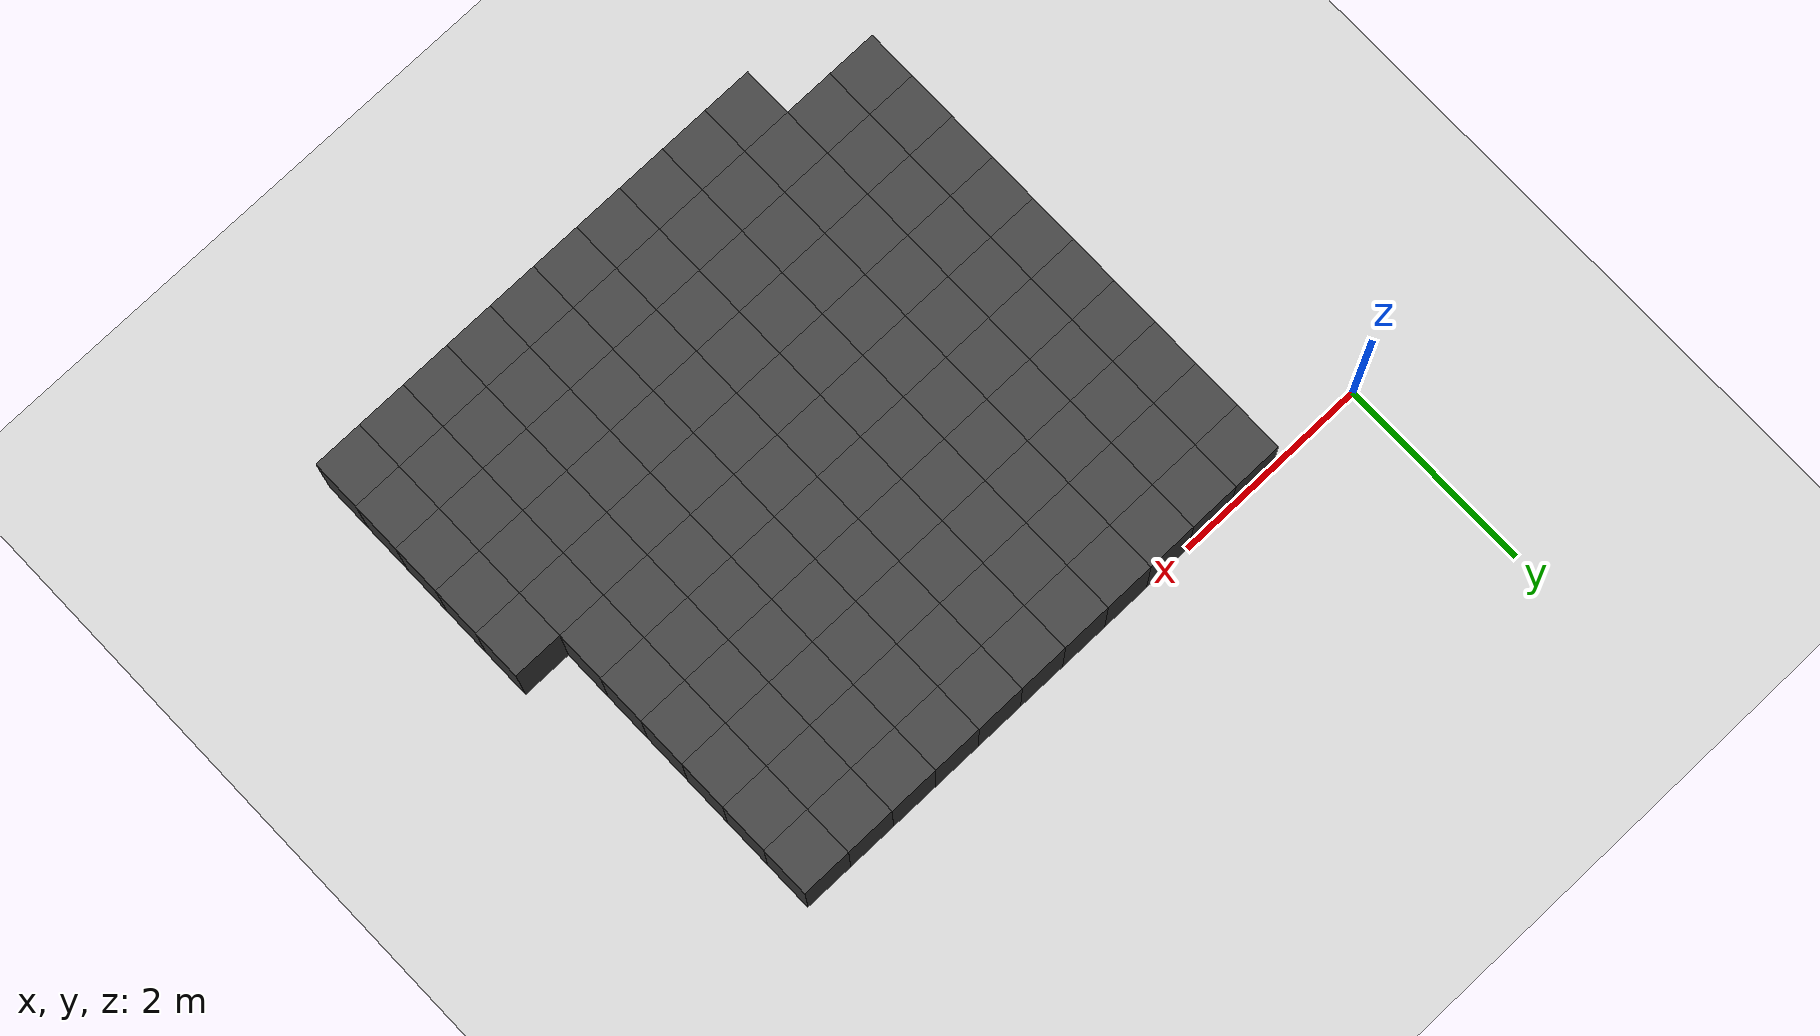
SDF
<sdf version="1.7">
 <world name="map_12818">
  <model name="ground_plane">
   <static>true</static>
   <link name="link">
    <collision name="collision">
     <geometry><plane><normal>0 0 1</normal><size>200 200</size></plane></geometry>
    </collision>
    <visual name="visual">
     <geometry><plane><normal>0 0 1</normal><size>200 200</size></plane></geometry>
     <material><ambient>0.8 0.8 0.8 1</ambient><diffuse>0.8 0.8 0.8 1</diffuse></material>
    </visual>
   </link>
  </model>
  <model name="maze_environment">
   <static>true</static>
   <link name="wall_1112">
    <pose>1.250 -0.250 0.500 0 0 0</pose>
    <collision name="col"><geometry><box><size>0.5 0.5 1.0</size></box></geometry></collision>
    <visual name="vis">
     <geometry><box><size>0.5 0.5 1.0</size></box></geometry>
     <material><ambient>0.15 0.15 0.15 1</ambient><diffuse>0.25 0.25 0.25 1</diffuse></material>
    </visual>
   </link>
   <link name="wall_1113">
    <pose>1.750 -0.250 0.500 0 0 0</pose>
    <collision name="col"><geometry><box><size>0.5 0.5 1.0</size></box></geometry></collision>
    <visual name="vis">
     <geometry><box><size>0.5 0.5 1.0</size></box></geometry>
     <material><ambient>0.15 0.15 0.15 1</ambient><diffuse>0.25 0.25 0.25 1</diffuse></material>
    </visual>
   </link>
   <link name="wall_1114">
    <pose>2.250 -0.250 0.500 0 0 0</pose>
    <collision name="col"><geometry><box><size>0.5 0.5 1.0</size></box></geometry></collision>
    <visual name="vis">
     <geometry><box><size>0.5 0.5 1.0</size></box></geometry>
     <material><ambient>0.15 0.15 0.15 1</ambient><diffuse>0.25 0.25 0.25 1</diffuse></material>
    </visual>
   </link>
   <link name="wall_1115">
    <pose>2.750 -0.250 0.500 0 0 0</pose>
    <collision name="col"><geometry><box><size>0.5 0.5 1.0</size></box></geometry></collision>
    <visual name="vis">
     <geometry><box><size>0.5 0.5 1.0</size></box></geometry>
     <material><ambient>0.15 0.15 0.15 1</ambient><diffuse>0.25 0.25 0.25 1</diffuse></material>
    </visual>
   </link>
   <link name="wall_1116">
    <pose>3.250 -0.250 0.500 0 0 0</pose>
    <collision name="col"><geometry><box><size>0.5 0.5 1.0</size></box></geometry></collision>
    <visual name="vis">
     <geometry><box><size>0.5 0.5 1.0</size></box></geometry>
     <material><ambient>0.15 0.15 0.15 1</ambient><diffuse>0.25 0.25 0.25 1</diffuse></material>
    </visual>
   </link>
   <link name="wall_1117">
    <pose>3.750 -0.250 0.500 0 0 0</pose>
    <collision name="col"><geometry><box><size>0.5 0.5 1.0</size></box></geometry></collision>
    <visual name="vis">
     <geometry><box><size>0.5 0.5 1.0</size></box></geometry>
     <material><ambient>0.15 0.15 0.15 1</ambient><diffuse>0.25 0.25 0.25 1</diffuse></material>
    </visual>
   </link>
   <link name="wall_1118">
    <pose>4.250 -0.250 0.500 0 0 0</pose>
    <collision name="col"><geometry><box><size>0.5 0.5 1.0</size></box></geometry></collision>
    <visual name="vis">
     <geometry><box><size>0.5 0.5 1.0</size></box></geometry>
     <material><ambient>0.15 0.15 0.15 1</ambient><diffuse>0.25 0.25 0.25 1</diffuse></material>
    </visual>
   </link>
   <link name="wall_1119">
    <pose>4.750 -0.250 0.500 0 0 0</pose>
    <collision name="col"><geometry><box><size>0.5 0.5 1.0</size></box></geometry></collision>
    <visual name="vis">
     <geometry><box><size>0.5 0.5 1.0</size></box></geometry>
     <material><ambient>0.15 0.15 0.15 1</ambient><diffuse>0.25 0.25 0.25 1</diffuse></material>
    </visual>
   </link>
   <link name="wall_1120">
    <pose>5.250 -0.250 0.500 0 0 0</pose>
    <collision name="col"><geometry><box><size>0.5 0.5 1.0</size></box></geometry></collision>
    <visual name="vis">
     <geometry><box><size>0.5 0.5 1.0</size></box></geometry>
     <material><ambient>0.15 0.15 0.15 1</ambient><diffuse>0.25 0.25 0.25 1</diffuse></material>
    </visual>
   </link>
   <link name="wall_1121">
    <pose>5.750 -0.250 0.500 0 0 0</pose>
    <collision name="col"><geometry><box><size>0.5 0.5 1.0</size></box></geometry></collision>
    <visual name="vis">
     <geometry><box><size>0.5 0.5 1.0</size></box></geometry>
     <material><ambient>0.15 0.15 0.15 1</ambient><diffuse>0.25 0.25 0.25 1</diffuse></material>
    </visual>
   </link>
   <link name="wall_1122">
    <pose>6.250 -0.250 0.500 0 0 0</pose>
    <collision name="col"><geometry><box><size>0.5 0.5 1.0</size></box></geometry></collision>
    <visual name="vis">
     <geometry><box><size>0.5 0.5 1.0</size></box></geometry>
     <material><ambient>0.15 0.15 0.15 1</ambient><diffuse>0.25 0.25 0.25 1</diffuse></material>
    </visual>
   </link>
   <link name="wall_1155">
    <pose>1.250 -0.750 0.500 0 0 0</pose>
    <collision name="col"><geometry><box><size>0.5 0.5 1.0</size></box></geometry></collision>
    <visual name="vis">
     <geometry><box><size>0.5 0.5 1.0</size></box></geometry>
     <material><ambient>0.15 0.15 0.15 1</ambient><diffuse>0.25 0.25 0.25 1</diffuse></material>
    </visual>
   </link>
   <link name="wall_1156">
    <pose>1.750 -0.750 0.500 0 0 0</pose>
    <collision name="col"><geometry><box><size>0.5 0.5 1.0</size></box></geometry></collision>
    <visual name="vis">
     <geometry><box><size>0.5 0.5 1.0</size></box></geometry>
     <material><ambient>0.15 0.15 0.15 1</ambient><diffuse>0.25 0.25 0.25 1</diffuse></material>
    </visual>
   </link>
   <link name="wall_1157">
    <pose>2.250 -0.750 0.500 0 0 0</pose>
    <collision name="col"><geometry><box><size>0.5 0.5 1.0</size></box></geometry></collision>
    <visual name="vis">
     <geometry><box><size>0.5 0.5 1.0</size></box></geometry>
     <material><ambient>0.15 0.15 0.15 1</ambient><diffuse>0.25 0.25 0.25 1</diffuse></material>
    </visual>
   </link>
   <link name="wall_1158">
    <pose>2.750 -0.750 0.500 0 0 0</pose>
    <collision name="col"><geometry><box><size>0.5 0.5 1.0</size></box></geometry></collision>
    <visual name="vis">
     <geometry><box><size>0.5 0.5 1.0</size></box></geometry>
     <material><ambient>0.15 0.15 0.15 1</ambient><diffuse>0.25 0.25 0.25 1</diffuse></material>
    </visual>
   </link>
   <link name="wall_1159">
    <pose>3.250 -0.750 0.500 0 0 0</pose>
    <collision name="col"><geometry><box><size>0.5 0.5 1.0</size></box></geometry></collision>
    <visual name="vis">
     <geometry><box><size>0.5 0.5 1.0</size></box></geometry>
     <material><ambient>0.15 0.15 0.15 1</ambient><diffuse>0.25 0.25 0.25 1</diffuse></material>
    </visual>
   </link>
   <link name="wall_1160">
    <pose>3.750 -0.750 0.500 0 0 0</pose>
    <collision name="col"><geometry><box><size>0.5 0.5 1.0</size></box></geometry></collision>
    <visual name="vis">
     <geometry><box><size>0.5 0.5 1.0</size></box></geometry>
     <material><ambient>0.15 0.15 0.15 1</ambient><diffuse>0.25 0.25 0.25 1</diffuse></material>
    </visual>
   </link>
   <link name="wall_1161">
    <pose>4.250 -0.750 0.500 0 0 0</pose>
    <collision name="col"><geometry><box><size>0.5 0.5 1.0</size></box></geometry></collision>
    <visual name="vis">
     <geometry><box><size>0.5 0.5 1.0</size></box></geometry>
     <material><ambient>0.15 0.15 0.15 1</ambient><diffuse>0.25 0.25 0.25 1</diffuse></material>
    </visual>
   </link>
   <link name="wall_1162">
    <pose>4.750 -0.750 0.500 0 0 0</pose>
    <collision name="col"><geometry><box><size>0.5 0.5 1.0</size></box></geometry></collision>
    <visual name="vis">
     <geometry><box><size>0.5 0.5 1.0</size></box></geometry>
     <material><ambient>0.15 0.15 0.15 1</ambient><diffuse>0.25 0.25 0.25 1</diffuse></material>
    </visual>
   </link>
   <link name="wall_1163">
    <pose>5.250 -0.750 0.500 0 0 0</pose>
    <collision name="col"><geometry><box><size>0.5 0.5 1.0</size></box></geometry></collision>
    <visual name="vis">
     <geometry><box><size>0.5 0.5 1.0</size></box></geometry>
     <material><ambient>0.15 0.15 0.15 1</ambient><diffuse>0.25 0.25 0.25 1</diffuse></material>
    </visual>
   </link>
   <link name="wall_1164">
    <pose>5.750 -0.750 0.500 0 0 0</pose>
    <collision name="col"><geometry><box><size>0.5 0.5 1.0</size></box></geometry></collision>
    <visual name="vis">
     <geometry><box><size>0.5 0.5 1.0</size></box></geometry>
     <material><ambient>0.15 0.15 0.15 1</ambient><diffuse>0.25 0.25 0.25 1</diffuse></material>
    </visual>
   </link>
   <link name="wall_1165">
    <pose>6.250 -0.750 0.500 0 0 0</pose>
    <collision name="col"><geometry><box><size>0.5 0.5 1.0</size></box></geometry></collision>
    <visual name="vis">
     <geometry><box><size>0.5 0.5 1.0</size></box></geometry>
     <material><ambient>0.15 0.15 0.15 1</ambient><diffuse>0.25 0.25 0.25 1</diffuse></material>
    </visual>
   </link>
   <link name="wall_1198">
    <pose>1.250 -1.250 0.500 0 0 0</pose>
    <collision name="col"><geometry><box><size>0.5 0.5 1.0</size></box></geometry></collision>
    <visual name="vis">
     <geometry><box><size>0.5 0.5 1.0</size></box></geometry>
     <material><ambient>0.15 0.15 0.15 1</ambient><diffuse>0.25 0.25 0.25 1</diffuse></material>
    </visual>
   </link>
   <link name="wall_1199">
    <pose>1.750 -1.250 0.500 0 0 0</pose>
    <collision name="col"><geometry><box><size>0.5 0.5 1.0</size></box></geometry></collision>
    <visual name="vis">
     <geometry><box><size>0.5 0.5 1.0</size></box></geometry>
     <material><ambient>0.15 0.15 0.15 1</ambient><diffuse>0.25 0.25 0.25 1</diffuse></material>
    </visual>
   </link>
   <link name="wall_1200">
    <pose>2.250 -1.250 0.500 0 0 0</pose>
    <collision name="col"><geometry><box><size>0.5 0.5 1.0</size></box></geometry></collision>
    <visual name="vis">
     <geometry><box><size>0.5 0.5 1.0</size></box></geometry>
     <material><ambient>0.15 0.15 0.15 1</ambient><diffuse>0.25 0.25 0.25 1</diffuse></material>
    </visual>
   </link>
   <link name="wall_1201">
    <pose>2.750 -1.250 0.500 0 0 0</pose>
    <collision name="col"><geometry><box><size>0.5 0.5 1.0</size></box></geometry></collision>
    <visual name="vis">
     <geometry><box><size>0.5 0.5 1.0</size></box></geometry>
     <material><ambient>0.15 0.15 0.15 1</ambient><diffuse>0.25 0.25 0.25 1</diffuse></material>
    </visual>
   </link>
   <link name="wall_1202">
    <pose>3.250 -1.250 0.500 0 0 0</pose>
    <collision name="col"><geometry><box><size>0.5 0.5 1.0</size></box></geometry></collision>
    <visual name="vis">
     <geometry><box><size>0.5 0.5 1.0</size></box></geometry>
     <material><ambient>0.15 0.15 0.15 1</ambient><diffuse>0.25 0.25 0.25 1</diffuse></material>
    </visual>
   </link>
   <link name="wall_1203">
    <pose>3.750 -1.250 0.500 0 0 0</pose>
    <collision name="col"><geometry><box><size>0.5 0.5 1.0</size></box></geometry></collision>
    <visual name="vis">
     <geometry><box><size>0.5 0.5 1.0</size></box></geometry>
     <material><ambient>0.15 0.15 0.15 1</ambient><diffuse>0.25 0.25 0.25 1</diffuse></material>
    </visual>
   </link>
   <link name="wall_1204">
    <pose>4.250 -1.250 0.500 0 0 0</pose>
    <collision name="col"><geometry><box><size>0.5 0.5 1.0</size></box></geometry></collision>
    <visual name="vis">
     <geometry><box><size>0.5 0.5 1.0</size></box></geometry>
     <material><ambient>0.15 0.15 0.15 1</ambient><diffuse>0.25 0.25 0.25 1</diffuse></material>
    </visual>
   </link>
   <link name="wall_1205">
    <pose>4.750 -1.250 0.500 0 0 0</pose>
    <collision name="col"><geometry><box><size>0.5 0.5 1.0</size></box></geometry></collision>
    <visual name="vis">
     <geometry><box><size>0.5 0.5 1.0</size></box></geometry>
     <material><ambient>0.15 0.15 0.15 1</ambient><diffuse>0.25 0.25 0.25 1</diffuse></material>
    </visual>
   </link>
   <link name="wall_1206">
    <pose>5.250 -1.250 0.500 0 0 0</pose>
    <collision name="col"><geometry><box><size>0.5 0.5 1.0</size></box></geometry></collision>
    <visual name="vis">
     <geometry><box><size>0.5 0.5 1.0</size></box></geometry>
     <material><ambient>0.15 0.15 0.15 1</ambient><diffuse>0.25 0.25 0.25 1</diffuse></material>
    </visual>
   </link>
   <link name="wall_1207">
    <pose>5.750 -1.250 0.500 0 0 0</pose>
    <collision name="col"><geometry><box><size>0.5 0.5 1.0</size></box></geometry></collision>
    <visual name="vis">
     <geometry><box><size>0.5 0.5 1.0</size></box></geometry>
     <material><ambient>0.15 0.15 0.15 1</ambient><diffuse>0.25 0.25 0.25 1</diffuse></material>
    </visual>
   </link>
   <link name="wall_1208">
    <pose>6.250 -1.250 0.500 0 0 0</pose>
    <collision name="col"><geometry><box><size>0.5 0.5 1.0</size></box></geometry></collision>
    <visual name="vis">
     <geometry><box><size>0.5 0.5 1.0</size></box></geometry>
     <material><ambient>0.15 0.15 0.15 1</ambient><diffuse>0.25 0.25 0.25 1</diffuse></material>
    </visual>
   </link>
   <link name="wall_1235">
    <pose>1.250 -1.750 0.500 0 0 0</pose>
    <collision name="col"><geometry><box><size>0.5 0.5 1.0</size></box></geometry></collision>
    <visual name="vis">
     <geometry><box><size>0.5 0.5 1.0</size></box></geometry>
     <material><ambient>0.15 0.15 0.15 1</ambient><diffuse>0.25 0.25 0.25 1</diffuse></material>
    </visual>
   </link>
   <link name="wall_1236">
    <pose>1.750 -1.750 0.500 0 0 0</pose>
    <collision name="col"><geometry><box><size>0.5 0.5 1.0</size></box></geometry></collision>
    <visual name="vis">
     <geometry><box><size>0.5 0.5 1.0</size></box></geometry>
     <material><ambient>0.15 0.15 0.15 1</ambient><diffuse>0.25 0.25 0.25 1</diffuse></material>
    </visual>
   </link>
   <link name="wall_1237">
    <pose>2.250 -1.750 0.500 0 0 0</pose>
    <collision name="col"><geometry><box><size>0.5 0.5 1.0</size></box></geometry></collision>
    <visual name="vis">
     <geometry><box><size>0.5 0.5 1.0</size></box></geometry>
     <material><ambient>0.15 0.15 0.15 1</ambient><diffuse>0.25 0.25 0.25 1</diffuse></material>
    </visual>
   </link>
   <link name="wall_1238">
    <pose>2.750 -1.750 0.500 0 0 0</pose>
    <collision name="col"><geometry><box><size>0.5 0.5 1.0</size></box></geometry></collision>
    <visual name="vis">
     <geometry><box><size>0.5 0.5 1.0</size></box></geometry>
     <material><ambient>0.15 0.15 0.15 1</ambient><diffuse>0.25 0.25 0.25 1</diffuse></material>
    </visual>
   </link>
   <link name="wall_1239">
    <pose>3.250 -1.750 0.500 0 0 0</pose>
    <collision name="col"><geometry><box><size>0.5 0.5 1.0</size></box></geometry></collision>
    <visual name="vis">
     <geometry><box><size>0.5 0.5 1.0</size></box></geometry>
     <material><ambient>0.15 0.15 0.15 1</ambient><diffuse>0.25 0.25 0.25 1</diffuse></material>
    </visual>
   </link>
   <link name="wall_1240">
    <pose>3.750 -1.750 0.500 0 0 0</pose>
    <collision name="col"><geometry><box><size>0.5 0.5 1.0</size></box></geometry></collision>
    <visual name="vis">
     <geometry><box><size>0.5 0.5 1.0</size></box></geometry>
     <material><ambient>0.15 0.15 0.15 1</ambient><diffuse>0.25 0.25 0.25 1</diffuse></material>
    </visual>
   </link>
   <link name="wall_1241">
    <pose>4.250 -1.750 0.500 0 0 0</pose>
    <collision name="col"><geometry><box><size>0.5 0.5 1.0</size></box></geometry></collision>
    <visual name="vis">
     <geometry><box><size>0.5 0.5 1.0</size></box></geometry>
     <material><ambient>0.15 0.15 0.15 1</ambient><diffuse>0.25 0.25 0.25 1</diffuse></material>
    </visual>
   </link>
   <link name="wall_1242">
    <pose>4.750 -1.750 0.500 0 0 0</pose>
    <collision name="col"><geometry><box><size>0.5 0.5 1.0</size></box></geometry></collision>
    <visual name="vis">
     <geometry><box><size>0.5 0.5 1.0</size></box></geometry>
     <material><ambient>0.15 0.15 0.15 1</ambient><diffuse>0.25 0.25 0.25 1</diffuse></material>
    </visual>
   </link>
   <link name="wall_1243">
    <pose>5.250 -1.750 0.500 0 0 0</pose>
    <collision name="col"><geometry><box><size>0.5 0.5 1.0</size></box></geometry></collision>
    <visual name="vis">
     <geometry><box><size>0.5 0.5 1.0</size></box></geometry>
     <material><ambient>0.15 0.15 0.15 1</ambient><diffuse>0.25 0.25 0.25 1</diffuse></material>
    </visual>
   </link>
   <link name="wall_1244">
    <pose>5.750 -1.750 0.500 0 0 0</pose>
    <collision name="col"><geometry><box><size>0.5 0.5 1.0</size></box></geometry></collision>
    <visual name="vis">
     <geometry><box><size>0.5 0.5 1.0</size></box></geometry>
     <material><ambient>0.15 0.15 0.15 1</ambient><diffuse>0.25 0.25 0.25 1</diffuse></material>
    </visual>
   </link>
   <link name="wall_1245">
    <pose>6.250 -1.750 0.500 0 0 0</pose>
    <collision name="col"><geometry><box><size>0.5 0.5 1.0</size></box></geometry></collision>
    <visual name="vis">
     <geometry><box><size>0.5 0.5 1.0</size></box></geometry>
     <material><ambient>0.15 0.15 0.15 1</ambient><diffuse>0.25 0.25 0.25 1</diffuse></material>
    </visual>
   </link>
   <link name="wall_1272">
    <pose>1.250 -2.250 0.500 0 0 0</pose>
    <collision name="col"><geometry><box><size>0.5 0.5 1.0</size></box></geometry></collision>
    <visual name="vis">
     <geometry><box><size>0.5 0.5 1.0</size></box></geometry>
     <material><ambient>0.15 0.15 0.15 1</ambient><diffuse>0.25 0.25 0.25 1</diffuse></material>
    </visual>
   </link>
   <link name="wall_1273">
    <pose>1.750 -2.250 0.500 0 0 0</pose>
    <collision name="col"><geometry><box><size>0.5 0.5 1.0</size></box></geometry></collision>
    <visual name="vis">
     <geometry><box><size>0.5 0.5 1.0</size></box></geometry>
     <material><ambient>0.15 0.15 0.15 1</ambient><diffuse>0.25 0.25 0.25 1</diffuse></material>
    </visual>
   </link>
   <link name="wall_1274">
    <pose>2.250 -2.250 0.500 0 0 0</pose>
    <collision name="col"><geometry><box><size>0.5 0.5 1.0</size></box></geometry></collision>
    <visual name="vis">
     <geometry><box><size>0.5 0.5 1.0</size></box></geometry>
     <material><ambient>0.15 0.15 0.15 1</ambient><diffuse>0.25 0.25 0.25 1</diffuse></material>
    </visual>
   </link>
   <link name="wall_1275">
    <pose>2.750 -2.250 0.500 0 0 0</pose>
    <collision name="col"><geometry><box><size>0.5 0.5 1.0</size></box></geometry></collision>
    <visual name="vis">
     <geometry><box><size>0.5 0.5 1.0</size></box></geometry>
     <material><ambient>0.15 0.15 0.15 1</ambient><diffuse>0.25 0.25 0.25 1</diffuse></material>
    </visual>
   </link>
   <link name="wall_1276">
    <pose>3.250 -2.250 0.500 0 0 0</pose>
    <collision name="col"><geometry><box><size>0.5 0.5 1.0</size></box></geometry></collision>
    <visual name="vis">
     <geometry><box><size>0.5 0.5 1.0</size></box></geometry>
     <material><ambient>0.15 0.15 0.15 1</ambient><diffuse>0.25 0.25 0.25 1</diffuse></material>
    </visual>
   </link>
   <link name="wall_1277">
    <pose>3.750 -2.250 0.500 0 0 0</pose>
    <collision name="col"><geometry><box><size>0.5 0.5 1.0</size></box></geometry></collision>
    <visual name="vis">
     <geometry><box><size>0.5 0.5 1.0</size></box></geometry>
     <material><ambient>0.15 0.15 0.15 1</ambient><diffuse>0.25 0.25 0.25 1</diffuse></material>
    </visual>
   </link>
   <link name="wall_1278">
    <pose>4.250 -2.250 0.500 0 0 0</pose>
    <collision name="col"><geometry><box><size>0.5 0.5 1.0</size></box></geometry></collision>
    <visual name="vis">
     <geometry><box><size>0.5 0.5 1.0</size></box></geometry>
     <material><ambient>0.15 0.15 0.15 1</ambient><diffuse>0.25 0.25 0.25 1</diffuse></material>
    </visual>
   </link>
   <link name="wall_1279">
    <pose>4.750 -2.250 0.500 0 0 0</pose>
    <collision name="col"><geometry><box><size>0.5 0.5 1.0</size></box></geometry></collision>
    <visual name="vis">
     <geometry><box><size>0.5 0.5 1.0</size></box></geometry>
     <material><ambient>0.15 0.15 0.15 1</ambient><diffuse>0.25 0.25 0.25 1</diffuse></material>
    </visual>
   </link>
   <link name="wall_1280">
    <pose>5.250 -2.250 0.500 0 0 0</pose>
    <collision name="col"><geometry><box><size>0.5 0.5 1.0</size></box></geometry></collision>
    <visual name="vis">
     <geometry><box><size>0.5 0.5 1.0</size></box></geometry>
     <material><ambient>0.15 0.15 0.15 1</ambient><diffuse>0.25 0.25 0.25 1</diffuse></material>
    </visual>
   </link>
   <link name="wall_1281">
    <pose>5.750 -2.250 0.500 0 0 0</pose>
    <collision name="col"><geometry><box><size>0.5 0.5 1.0</size></box></geometry></collision>
    <visual name="vis">
     <geometry><box><size>0.5 0.5 1.0</size></box></geometry>
     <material><ambient>0.15 0.15 0.15 1</ambient><diffuse>0.25 0.25 0.25 1</diffuse></material>
    </visual>
   </link>
   <link name="wall_1282">
    <pose>6.250 -2.250 0.500 0 0 0</pose>
    <collision name="col"><geometry><box><size>0.5 0.5 1.0</size></box></geometry></collision>
    <visual name="vis">
     <geometry><box><size>0.5 0.5 1.0</size></box></geometry>
     <material><ambient>0.15 0.15 0.15 1</ambient><diffuse>0.25 0.25 0.25 1</diffuse></material>
    </visual>
   </link>
   <link name="wall_1313">
    <pose>1.250 -2.750 0.500 0 0 0</pose>
    <collision name="col"><geometry><box><size>0.5 0.5 1.0</size></box></geometry></collision>
    <visual name="vis">
     <geometry><box><size>0.5 0.5 1.0</size></box></geometry>
     <material><ambient>0.15 0.15 0.15 1</ambient><diffuse>0.25 0.25 0.25 1</diffuse></material>
    </visual>
   </link>
   <link name="wall_1314">
    <pose>1.750 -2.750 0.500 0 0 0</pose>
    <collision name="col"><geometry><box><size>0.5 0.5 1.0</size></box></geometry></collision>
    <visual name="vis">
     <geometry><box><size>0.5 0.5 1.0</size></box></geometry>
     <material><ambient>0.15 0.15 0.15 1</ambient><diffuse>0.25 0.25 0.25 1</diffuse></material>
    </visual>
   </link>
   <link name="wall_1315">
    <pose>2.250 -2.750 0.500 0 0 0</pose>
    <collision name="col"><geometry><box><size>0.5 0.5 1.0</size></box></geometry></collision>
    <visual name="vis">
     <geometry><box><size>0.5 0.5 1.0</size></box></geometry>
     <material><ambient>0.15 0.15 0.15 1</ambient><diffuse>0.25 0.25 0.25 1</diffuse></material>
    </visual>
   </link>
   <link name="wall_1316">
    <pose>2.750 -2.750 0.500 0 0 0</pose>
    <collision name="col"><geometry><box><size>0.5 0.5 1.0</size></box></geometry></collision>
    <visual name="vis">
     <geometry><box><size>0.5 0.5 1.0</size></box></geometry>
     <material><ambient>0.15 0.15 0.15 1</ambient><diffuse>0.25 0.25 0.25 1</diffuse></material>
    </visual>
   </link>
   <link name="wall_1317">
    <pose>3.250 -2.750 0.500 0 0 0</pose>
    <collision name="col"><geometry><box><size>0.5 0.5 1.0</size></box></geometry></collision>
    <visual name="vis">
     <geometry><box><size>0.5 0.5 1.0</size></box></geometry>
     <material><ambient>0.15 0.15 0.15 1</ambient><diffuse>0.25 0.25 0.25 1</diffuse></material>
    </visual>
   </link>
   <link name="wall_1318">
    <pose>3.750 -2.750 0.500 0 0 0</pose>
    <collision name="col"><geometry><box><size>0.5 0.5 1.0</size></box></geometry></collision>
    <visual name="vis">
     <geometry><box><size>0.5 0.5 1.0</size></box></geometry>
     <material><ambient>0.15 0.15 0.15 1</ambient><diffuse>0.25 0.25 0.25 1</diffuse></material>
    </visual>
   </link>
   <link name="wall_1319">
    <pose>4.250 -2.750 0.500 0 0 0</pose>
    <collision name="col"><geometry><box><size>0.5 0.5 1.0</size></box></geometry></collision>
    <visual name="vis">
     <geometry><box><size>0.5 0.5 1.0</size></box></geometry>
     <material><ambient>0.15 0.15 0.15 1</ambient><diffuse>0.25 0.25 0.25 1</diffuse></material>
    </visual>
   </link>
   <link name="wall_1320">
    <pose>4.750 -2.750 0.500 0 0 0</pose>
    <collision name="col"><geometry><box><size>0.5 0.5 1.0</size></box></geometry></collision>
    <visual name="vis">
     <geometry><box><size>0.5 0.5 1.0</size></box></geometry>
     <material><ambient>0.15 0.15 0.15 1</ambient><diffuse>0.25 0.25 0.25 1</diffuse></material>
    </visual>
   </link>
   <link name="wall_1321">
    <pose>5.250 -2.750 0.500 0 0 0</pose>
    <collision name="col"><geometry><box><size>0.5 0.5 1.0</size></box></geometry></collision>
    <visual name="vis">
     <geometry><box><size>0.5 0.5 1.0</size></box></geometry>
     <material><ambient>0.15 0.15 0.15 1</ambient><diffuse>0.25 0.25 0.25 1</diffuse></material>
    </visual>
   </link>
   <link name="wall_1322">
    <pose>5.750 -2.750 0.500 0 0 0</pose>
    <collision name="col"><geometry><box><size>0.5 0.5 1.0</size></box></geometry></collision>
    <visual name="vis">
     <geometry><box><size>0.5 0.5 1.0</size></box></geometry>
     <material><ambient>0.15 0.15 0.15 1</ambient><diffuse>0.25 0.25 0.25 1</diffuse></material>
    </visual>
   </link>
   <link name="wall_1323">
    <pose>6.250 -2.750 0.500 0 0 0</pose>
    <collision name="col"><geometry><box><size>0.5 0.5 1.0</size></box></geometry></collision>
    <visual name="vis">
     <geometry><box><size>0.5 0.5 1.0</size></box></geometry>
     <material><ambient>0.15 0.15 0.15 1</ambient><diffuse>0.25 0.25 0.25 1</diffuse></material>
    </visual>
   </link>
   <link name="wall_1345">
    <pose>1.250 -3.250 0.500 0 0 0</pose>
    <collision name="col"><geometry><box><size>0.5 0.5 1.0</size></box></geometry></collision>
    <visual name="vis">
     <geometry><box><size>0.5 0.5 1.0</size></box></geometry>
     <material><ambient>0.15 0.15 0.15 1</ambient><diffuse>0.25 0.25 0.25 1</diffuse></material>
    </visual>
   </link>
   <link name="wall_1346">
    <pose>1.750 -3.250 0.500 0 0 0</pose>
    <collision name="col"><geometry><box><size>0.5 0.5 1.0</size></box></geometry></collision>
    <visual name="vis">
     <geometry><box><size>0.5 0.5 1.0</size></box></geometry>
     <material><ambient>0.15 0.15 0.15 1</ambient><diffuse>0.25 0.25 0.25 1</diffuse></material>
    </visual>
   </link>
   <link name="wall_1347">
    <pose>2.250 -3.250 0.500 0 0 0</pose>
    <collision name="col"><geometry><box><size>0.5 0.5 1.0</size></box></geometry></collision>
    <visual name="vis">
     <geometry><box><size>0.5 0.5 1.0</size></box></geometry>
     <material><ambient>0.15 0.15 0.15 1</ambient><diffuse>0.25 0.25 0.25 1</diffuse></material>
    </visual>
   </link>
   <link name="wall_1348">
    <pose>2.750 -3.250 0.500 0 0 0</pose>
    <collision name="col"><geometry><box><size>0.5 0.5 1.0</size></box></geometry></collision>
    <visual name="vis">
     <geometry><box><size>0.5 0.5 1.0</size></box></geometry>
     <material><ambient>0.15 0.15 0.15 1</ambient><diffuse>0.25 0.25 0.25 1</diffuse></material>
    </visual>
   </link>
   <link name="wall_1349">
    <pose>3.250 -3.250 0.500 0 0 0</pose>
    <collision name="col"><geometry><box><size>0.5 0.5 1.0</size></box></geometry></collision>
    <visual name="vis">
     <geometry><box><size>0.5 0.5 1.0</size></box></geometry>
     <material><ambient>0.15 0.15 0.15 1</ambient><diffuse>0.25 0.25 0.25 1</diffuse></material>
    </visual>
   </link>
   <link name="wall_1350">
    <pose>3.750 -3.250 0.500 0 0 0</pose>
    <collision name="col"><geometry><box><size>0.5 0.5 1.0</size></box></geometry></collision>
    <visual name="vis">
     <geometry><box><size>0.5 0.5 1.0</size></box></geometry>
     <material><ambient>0.15 0.15 0.15 1</ambient><diffuse>0.25 0.25 0.25 1</diffuse></material>
    </visual>
   </link>
   <link name="wall_1351">
    <pose>4.250 -3.250 0.500 0 0 0</pose>
    <collision name="col"><geometry><box><size>0.5 0.5 1.0</size></box></geometry></collision>
    <visual name="vis">
     <geometry><box><size>0.5 0.5 1.0</size></box></geometry>
     <material><ambient>0.15 0.15 0.15 1</ambient><diffuse>0.25 0.25 0.25 1</diffuse></material>
    </visual>
   </link>
   <link name="wall_1352">
    <pose>4.750 -3.250 0.500 0 0 0</pose>
    <collision name="col"><geometry><box><size>0.5 0.5 1.0</size></box></geometry></collision>
    <visual name="vis">
     <geometry><box><size>0.5 0.5 1.0</size></box></geometry>
     <material><ambient>0.15 0.15 0.15 1</ambient><diffuse>0.25 0.25 0.25 1</diffuse></material>
    </visual>
   </link>
   <link name="wall_1353">
    <pose>5.250 -3.250 0.500 0 0 0</pose>
    <collision name="col"><geometry><box><size>0.5 0.5 1.0</size></box></geometry></collision>
    <visual name="vis">
     <geometry><box><size>0.5 0.5 1.0</size></box></geometry>
     <material><ambient>0.15 0.15 0.15 1</ambient><diffuse>0.25 0.25 0.25 1</diffuse></material>
    </visual>
   </link>
   <link name="wall_1354">
    <pose>5.750 -3.250 0.500 0 0 0</pose>
    <collision name="col"><geometry><box><size>0.5 0.5 1.0</size></box></geometry></collision>
    <visual name="vis">
     <geometry><box><size>0.5 0.5 1.0</size></box></geometry>
     <material><ambient>0.15 0.15 0.15 1</ambient><diffuse>0.25 0.25 0.25 1</diffuse></material>
    </visual>
   </link>
   <link name="wall_1355">
    <pose>6.250 -3.250 0.500 0 0 0</pose>
    <collision name="col"><geometry><box><size>0.5 0.5 1.0</size></box></geometry></collision>
    <visual name="vis">
     <geometry><box><size>0.5 0.5 1.0</size></box></geometry>
     <material><ambient>0.15 0.15 0.15 1</ambient><diffuse>0.25 0.25 0.25 1</diffuse></material>
    </visual>
   </link>
   <link name="wall_1356">
    <pose>6.750 -3.250 0.500 0 0 0</pose>
    <collision name="col"><geometry><box><size>0.5 0.5 1.0</size></box></geometry></collision>
    <visual name="vis">
     <geometry><box><size>0.5 0.5 1.0</size></box></geometry>
     <material><ambient>0.15 0.15 0.15 1</ambient><diffuse>0.25 0.25 0.25 1</diffuse></material>
    </visual>
   </link>
   <link name="wall_1377">
    <pose>1.250 -3.750 0.500 0 0 0</pose>
    <collision name="col"><geometry><box><size>0.5 0.5 1.0</size></box></geometry></collision>
    <visual name="vis">
     <geometry><box><size>0.5 0.5 1.0</size></box></geometry>
     <material><ambient>0.15 0.15 0.15 1</ambient><diffuse>0.25 0.25 0.25 1</diffuse></material>
    </visual>
   </link>
   <link name="wall_1378">
    <pose>1.750 -3.750 0.500 0 0 0</pose>
    <collision name="col"><geometry><box><size>0.5 0.5 1.0</size></box></geometry></collision>
    <visual name="vis">
     <geometry><box><size>0.5 0.5 1.0</size></box></geometry>
     <material><ambient>0.15 0.15 0.15 1</ambient><diffuse>0.25 0.25 0.25 1</diffuse></material>
    </visual>
   </link>
   <link name="wall_1379">
    <pose>2.250 -3.750 0.500 0 0 0</pose>
    <collision name="col"><geometry><box><size>0.5 0.5 1.0</size></box></geometry></collision>
    <visual name="vis">
     <geometry><box><size>0.5 0.5 1.0</size></box></geometry>
     <material><ambient>0.15 0.15 0.15 1</ambient><diffuse>0.25 0.25 0.25 1</diffuse></material>
    </visual>
   </link>
   <link name="wall_1380">
    <pose>2.750 -3.750 0.500 0 0 0</pose>
    <collision name="col"><geometry><box><size>0.5 0.5 1.0</size></box></geometry></collision>
    <visual name="vis">
     <geometry><box><size>0.5 0.5 1.0</size></box></geometry>
     <material><ambient>0.15 0.15 0.15 1</ambient><diffuse>0.25 0.25 0.25 1</diffuse></material>
    </visual>
   </link>
   <link name="wall_1381">
    <pose>3.250 -3.750 0.500 0 0 0</pose>
    <collision name="col"><geometry><box><size>0.5 0.5 1.0</size></box></geometry></collision>
    <visual name="vis">
     <geometry><box><size>0.5 0.5 1.0</size></box></geometry>
     <material><ambient>0.15 0.15 0.15 1</ambient><diffuse>0.25 0.25 0.25 1</diffuse></material>
    </visual>
   </link>
   <link name="wall_1382">
    <pose>3.750 -3.750 0.500 0 0 0</pose>
    <collision name="col"><geometry><box><size>0.5 0.5 1.0</size></box></geometry></collision>
    <visual name="vis">
     <geometry><box><size>0.5 0.5 1.0</size></box></geometry>
     <material><ambient>0.15 0.15 0.15 1</ambient><diffuse>0.25 0.25 0.25 1</diffuse></material>
    </visual>
   </link>
   <link name="wall_1383">
    <pose>4.250 -3.750 0.500 0 0 0</pose>
    <collision name="col"><geometry><box><size>0.5 0.5 1.0</size></box></geometry></collision>
    <visual name="vis">
     <geometry><box><size>0.5 0.5 1.0</size></box></geometry>
     <material><ambient>0.15 0.15 0.15 1</ambient><diffuse>0.25 0.25 0.25 1</diffuse></material>
    </visual>
   </link>
   <link name="wall_1384">
    <pose>4.750 -3.750 0.500 0 0 0</pose>
    <collision name="col"><geometry><box><size>0.5 0.5 1.0</size></box></geometry></collision>
    <visual name="vis">
     <geometry><box><size>0.5 0.5 1.0</size></box></geometry>
     <material><ambient>0.15 0.15 0.15 1</ambient><diffuse>0.25 0.25 0.25 1</diffuse></material>
    </visual>
   </link>
   <link name="wall_1385">
    <pose>5.250 -3.750 0.500 0 0 0</pose>
    <collision name="col"><geometry><box><size>0.5 0.5 1.0</size></box></geometry></collision>
    <visual name="vis">
     <geometry><box><size>0.5 0.5 1.0</size></box></geometry>
     <material><ambient>0.15 0.15 0.15 1</ambient><diffuse>0.25 0.25 0.25 1</diffuse></material>
    </visual>
   </link>
   <link name="wall_1386">
    <pose>5.750 -3.750 0.500 0 0 0</pose>
    <collision name="col"><geometry><box><size>0.5 0.5 1.0</size></box></geometry></collision>
    <visual name="vis">
     <geometry><box><size>0.5 0.5 1.0</size></box></geometry>
     <material><ambient>0.15 0.15 0.15 1</ambient><diffuse>0.25 0.25 0.25 1</diffuse></material>
    </visual>
   </link>
   <link name="wall_1387">
    <pose>6.250 -3.750 0.500 0 0 0</pose>
    <collision name="col"><geometry><box><size>0.5 0.5 1.0</size></box></geometry></collision>
    <visual name="vis">
     <geometry><box><size>0.5 0.5 1.0</size></box></geometry>
     <material><ambient>0.15 0.15 0.15 1</ambient><diffuse>0.25 0.25 0.25 1</diffuse></material>
    </visual>
   </link>
   <link name="wall_1388">
    <pose>6.750 -3.750 0.500 0 0 0</pose>
    <collision name="col"><geometry><box><size>0.5 0.5 1.0</size></box></geometry></collision>
    <visual name="vis">
     <geometry><box><size>0.5 0.5 1.0</size></box></geometry>
     <material><ambient>0.15 0.15 0.15 1</ambient><diffuse>0.25 0.25 0.25 1</diffuse></material>
    </visual>
   </link>
   <link name="wall_1413">
    <pose>1.250 -4.250 0.500 0 0 0</pose>
    <collision name="col"><geometry><box><size>0.5 0.5 1.0</size></box></geometry></collision>
    <visual name="vis">
     <geometry><box><size>0.5 0.5 1.0</size></box></geometry>
     <material><ambient>0.15 0.15 0.15 1</ambient><diffuse>0.25 0.25 0.25 1</diffuse></material>
    </visual>
   </link>
   <link name="wall_1414">
    <pose>1.750 -4.250 0.500 0 0 0</pose>
    <collision name="col"><geometry><box><size>0.5 0.5 1.0</size></box></geometry></collision>
    <visual name="vis">
     <geometry><box><size>0.5 0.5 1.0</size></box></geometry>
     <material><ambient>0.15 0.15 0.15 1</ambient><diffuse>0.25 0.25 0.25 1</diffuse></material>
    </visual>
   </link>
   <link name="wall_1415">
    <pose>2.250 -4.250 0.500 0 0 0</pose>
    <collision name="col"><geometry><box><size>0.5 0.5 1.0</size></box></geometry></collision>
    <visual name="vis">
     <geometry><box><size>0.5 0.5 1.0</size></box></geometry>
     <material><ambient>0.15 0.15 0.15 1</ambient><diffuse>0.25 0.25 0.25 1</diffuse></material>
    </visual>
   </link>
   <link name="wall_1416">
    <pose>2.750 -4.250 0.500 0 0 0</pose>
    <collision name="col"><geometry><box><size>0.5 0.5 1.0</size></box></geometry></collision>
    <visual name="vis">
     <geometry><box><size>0.5 0.5 1.0</size></box></geometry>
     <material><ambient>0.15 0.15 0.15 1</ambient><diffuse>0.25 0.25 0.25 1</diffuse></material>
    </visual>
   </link>
   <link name="wall_1417">
    <pose>3.250 -4.250 0.500 0 0 0</pose>
    <collision name="col"><geometry><box><size>0.5 0.5 1.0</size></box></geometry></collision>
    <visual name="vis">
     <geometry><box><size>0.5 0.5 1.0</size></box></geometry>
     <material><ambient>0.15 0.15 0.15 1</ambient><diffuse>0.25 0.25 0.25 1</diffuse></material>
    </visual>
   </link>
   <link name="wall_1418">
    <pose>3.750 -4.250 0.500 0 0 0</pose>
    <collision name="col"><geometry><box><size>0.5 0.5 1.0</size></box></geometry></collision>
    <visual name="vis">
     <geometry><box><size>0.5 0.5 1.0</size></box></geometry>
     <material><ambient>0.15 0.15 0.15 1</ambient><diffuse>0.25 0.25 0.25 1</diffuse></material>
    </visual>
   </link>
   <link name="wall_1419">
    <pose>4.250 -4.250 0.500 0 0 0</pose>
    <collision name="col"><geometry><box><size>0.5 0.5 1.0</size></box></geometry></collision>
    <visual name="vis">
     <geometry><box><size>0.5 0.5 1.0</size></box></geometry>
     <material><ambient>0.15 0.15 0.15 1</ambient><diffuse>0.25 0.25 0.25 1</diffuse></material>
    </visual>
   </link>
   <link name="wall_1420">
    <pose>4.750 -4.250 0.500 0 0 0</pose>
    <collision name="col"><geometry><box><size>0.5 0.5 1.0</size></box></geometry></collision>
    <visual name="vis">
     <geometry><box><size>0.5 0.5 1.0</size></box></geometry>
     <material><ambient>0.15 0.15 0.15 1</ambient><diffuse>0.25 0.25 0.25 1</diffuse></material>
    </visual>
   </link>
   <link name="wall_1421">
    <pose>5.250 -4.250 0.500 0 0 0</pose>
    <collision name="col"><geometry><box><size>0.5 0.5 1.0</size></box></geometry></collision>
    <visual name="vis">
     <geometry><box><size>0.5 0.5 1.0</size></box></geometry>
     <material><ambient>0.15 0.15 0.15 1</ambient><diffuse>0.25 0.25 0.25 1</diffuse></material>
    </visual>
   </link>
   <link name="wall_1422">
    <pose>5.750 -4.250 0.500 0 0 0</pose>
    <collision name="col"><geometry><box><size>0.5 0.5 1.0</size></box></geometry></collision>
    <visual name="vis">
     <geometry><box><size>0.5 0.5 1.0</size></box></geometry>
     <material><ambient>0.15 0.15 0.15 1</ambient><diffuse>0.25 0.25 0.25 1</diffuse></material>
    </visual>
   </link>
   <link name="wall_1423">
    <pose>6.250 -4.250 0.500 0 0 0</pose>
    <collision name="col"><geometry><box><size>0.5 0.5 1.0</size></box></geometry></collision>
    <visual name="vis">
     <geometry><box><size>0.5 0.5 1.0</size></box></geometry>
     <material><ambient>0.15 0.15 0.15 1</ambient><diffuse>0.25 0.25 0.25 1</diffuse></material>
    </visual>
   </link>
   <link name="wall_1424">
    <pose>6.750 -4.250 0.500 0 0 0</pose>
    <collision name="col"><geometry><box><size>0.5 0.5 1.0</size></box></geometry></collision>
    <visual name="vis">
     <geometry><box><size>0.5 0.5 1.0</size></box></geometry>
     <material><ambient>0.15 0.15 0.15 1</ambient><diffuse>0.25 0.25 0.25 1</diffuse></material>
    </visual>
   </link>
   <link name="wall_1449">
    <pose>1.250 -4.750 0.500 0 0 0</pose>
    <collision name="col"><geometry><box><size>0.5 0.5 1.0</size></box></geometry></collision>
    <visual name="vis">
     <geometry><box><size>0.5 0.5 1.0</size></box></geometry>
     <material><ambient>0.15 0.15 0.15 1</ambient><diffuse>0.25 0.25 0.25 1</diffuse></material>
    </visual>
   </link>
   <link name="wall_1450">
    <pose>1.750 -4.750 0.500 0 0 0</pose>
    <collision name="col"><geometry><box><size>0.5 0.5 1.0</size></box></geometry></collision>
    <visual name="vis">
     <geometry><box><size>0.5 0.5 1.0</size></box></geometry>
     <material><ambient>0.15 0.15 0.15 1</ambient><diffuse>0.25 0.25 0.25 1</diffuse></material>
    </visual>
   </link>
   <link name="wall_1451">
    <pose>2.250 -4.750 0.500 0 0 0</pose>
    <collision name="col"><geometry><box><size>0.5 0.5 1.0</size></box></geometry></collision>
    <visual name="vis">
     <geometry><box><size>0.5 0.5 1.0</size></box></geometry>
     <material><ambient>0.15 0.15 0.15 1</ambient><diffuse>0.25 0.25 0.25 1</diffuse></material>
    </visual>
   </link>
   <link name="wall_1452">
    <pose>2.750 -4.750 0.500 0 0 0</pose>
    <collision name="col"><geometry><box><size>0.5 0.5 1.0</size></box></geometry></collision>
    <visual name="vis">
     <geometry><box><size>0.5 0.5 1.0</size></box></geometry>
     <material><ambient>0.15 0.15 0.15 1</ambient><diffuse>0.25 0.25 0.25 1</diffuse></material>
    </visual>
   </link>
   <link name="wall_1453">
    <pose>3.250 -4.750 0.500 0 0 0</pose>
    <collision name="col"><geometry><box><size>0.5 0.5 1.0</size></box></geometry></collision>
    <visual name="vis">
     <geometry><box><size>0.5 0.5 1.0</size></box></geometry>
     <material><ambient>0.15 0.15 0.15 1</ambient><diffuse>0.25 0.25 0.25 1</diffuse></material>
    </visual>
   </link>
   <link name="wall_1454">
    <pose>3.750 -4.750 0.500 0 0 0</pose>
    <collision name="col"><geometry><box><size>0.5 0.5 1.0</size></box></geometry></collision>
    <visual name="vis">
     <geometry><box><size>0.5 0.5 1.0</size></box></geometry>
     <material><ambient>0.15 0.15 0.15 1</ambient><diffuse>0.25 0.25 0.25 1</diffuse></material>
    </visual>
   </link>
   <link name="wall_1455">
    <pose>4.250 -4.750 0.500 0 0 0</pose>
    <collision name="col"><geometry><box><size>0.5 0.5 1.0</size></box></geometry></collision>
    <visual name="vis">
     <geometry><box><size>0.5 0.5 1.0</size></box></geometry>
     <material><ambient>0.15 0.15 0.15 1</ambient><diffuse>0.25 0.25 0.25 1</diffuse></material>
    </visual>
   </link>
   <link name="wall_1456">
    <pose>4.750 -4.750 0.500 0 0 0</pose>
    <collision name="col"><geometry><box><size>0.5 0.5 1.0</size></box></geometry></collision>
    <visual name="vis">
     <geometry><box><size>0.5 0.5 1.0</size></box></geometry>
     <material><ambient>0.15 0.15 0.15 1</ambient><diffuse>0.25 0.25 0.25 1</diffuse></material>
    </visual>
   </link>
   <link name="wall_1457">
    <pose>5.250 -4.750 0.500 0 0 0</pose>
    <collision name="col"><geometry><box><size>0.5 0.5 1.0</size></box></geometry></collision>
    <visual name="vis">
     <geometry><box><size>0.5 0.5 1.0</size></box></geometry>
     <material><ambient>0.15 0.15 0.15 1</ambient><diffuse>0.25 0.25 0.25 1</diffuse></material>
    </visual>
   </link>
   <link name="wall_1458">
    <pose>5.750 -4.750 0.500 0 0 0</pose>
    <collision name="col"><geometry><box><size>0.5 0.5 1.0</size></box></geometry></collision>
    <visual name="vis">
     <geometry><box><size>0.5 0.5 1.0</size></box></geometry>
     <material><ambient>0.15 0.15 0.15 1</ambient><diffuse>0.25 0.25 0.25 1</diffuse></material>
    </visual>
   </link>
   <link name="wall_1459">
    <pose>6.250 -4.750 0.500 0 0 0</pose>
    <collision name="col"><geometry><box><size>0.5 0.5 1.0</size></box></geometry></collision>
    <visual name="vis">
     <geometry><box><size>0.5 0.5 1.0</size></box></geometry>
     <material><ambient>0.15 0.15 0.15 1</ambient><diffuse>0.25 0.25 0.25 1</diffuse></material>
    </visual>
   </link>
   <link name="wall_1460">
    <pose>6.750 -4.750 0.500 0 0 0</pose>
    <collision name="col"><geometry><box><size>0.5 0.5 1.0</size></box></geometry></collision>
    <visual name="vis">
     <geometry><box><size>0.5 0.5 1.0</size></box></geometry>
     <material><ambient>0.15 0.15 0.15 1</ambient><diffuse>0.25 0.25 0.25 1</diffuse></material>
    </visual>
   </link>
   <link name="wall_1482">
    <pose>2.250 -5.250 0.500 0 0 0</pose>
    <collision name="col"><geometry><box><size>0.5 0.5 1.0</size></box></geometry></collision>
    <visual name="vis">
     <geometry><box><size>0.5 0.5 1.0</size></box></geometry>
     <material><ambient>0.15 0.15 0.15 1</ambient><diffuse>0.25 0.25 0.25 1</diffuse></material>
    </visual>
   </link>
   <link name="wall_1483">
    <pose>2.750 -5.250 0.500 0 0 0</pose>
    <collision name="col"><geometry><box><size>0.5 0.5 1.0</size></box></geometry></collision>
    <visual name="vis">
     <geometry><box><size>0.5 0.5 1.0</size></box></geometry>
     <material><ambient>0.15 0.15 0.15 1</ambient><diffuse>0.25 0.25 0.25 1</diffuse></material>
    </visual>
   </link>
   <link name="wall_1484">
    <pose>3.250 -5.250 0.500 0 0 0</pose>
    <collision name="col"><geometry><box><size>0.5 0.5 1.0</size></box></geometry></collision>
    <visual name="vis">
     <geometry><box><size>0.5 0.5 1.0</size></box></geometry>
     <material><ambient>0.15 0.15 0.15 1</ambient><diffuse>0.25 0.25 0.25 1</diffuse></material>
    </visual>
   </link>
   <link name="wall_1485">
    <pose>3.750 -5.250 0.500 0 0 0</pose>
    <collision name="col"><geometry><box><size>0.5 0.5 1.0</size></box></geometry></collision>
    <visual name="vis">
     <geometry><box><size>0.5 0.5 1.0</size></box></geometry>
     <material><ambient>0.15 0.15 0.15 1</ambient><diffuse>0.25 0.25 0.25 1</diffuse></material>
    </visual>
   </link>
   <link name="wall_1486">
    <pose>4.250 -5.250 0.500 0 0 0</pose>
    <collision name="col"><geometry><box><size>0.5 0.5 1.0</size></box></geometry></collision>
    <visual name="vis">
     <geometry><box><size>0.5 0.5 1.0</size></box></geometry>
     <material><ambient>0.15 0.15 0.15 1</ambient><diffuse>0.25 0.25 0.25 1</diffuse></material>
    </visual>
   </link>
   <link name="wall_1487">
    <pose>4.750 -5.250 0.500 0 0 0</pose>
    <collision name="col"><geometry><box><size>0.5 0.5 1.0</size></box></geometry></collision>
    <visual name="vis">
     <geometry><box><size>0.5 0.5 1.0</size></box></geometry>
     <material><ambient>0.15 0.15 0.15 1</ambient><diffuse>0.25 0.25 0.25 1</diffuse></material>
    </visual>
   </link>
   <link name="wall_1488">
    <pose>5.250 -5.250 0.500 0 0 0</pose>
    <collision name="col"><geometry><box><size>0.5 0.5 1.0</size></box></geometry></collision>
    <visual name="vis">
     <geometry><box><size>0.5 0.5 1.0</size></box></geometry>
     <material><ambient>0.15 0.15 0.15 1</ambient><diffuse>0.25 0.25 0.25 1</diffuse></material>
    </visual>
   </link>
   <link name="wall_1489">
    <pose>5.750 -5.250 0.500 0 0 0</pose>
    <collision name="col"><geometry><box><size>0.5 0.5 1.0</size></box></geometry></collision>
    <visual name="vis">
     <geometry><box><size>0.5 0.5 1.0</size></box></geometry>
     <material><ambient>0.15 0.15 0.15 1</ambient><diffuse>0.25 0.25 0.25 1</diffuse></material>
    </visual>
   </link>
   <link name="wall_1490">
    <pose>6.250 -5.250 0.500 0 0 0</pose>
    <collision name="col"><geometry><box><size>0.5 0.5 1.0</size></box></geometry></collision>
    <visual name="vis">
     <geometry><box><size>0.5 0.5 1.0</size></box></geometry>
     <material><ambient>0.15 0.15 0.15 1</ambient><diffuse>0.25 0.25 0.25 1</diffuse></material>
    </visual>
   </link>
   <link name="wall_1491">
    <pose>6.750 -5.250 0.500 0 0 0</pose>
    <collision name="col"><geometry><box><size>0.5 0.5 1.0</size></box></geometry></collision>
    <visual name="vis">
     <geometry><box><size>0.5 0.5 1.0</size></box></geometry>
     <material><ambient>0.15 0.15 0.15 1</ambient><diffuse>0.25 0.25 0.25 1</diffuse></material>
    </visual>
   </link>
  </model>
 </world>
</sdf>
